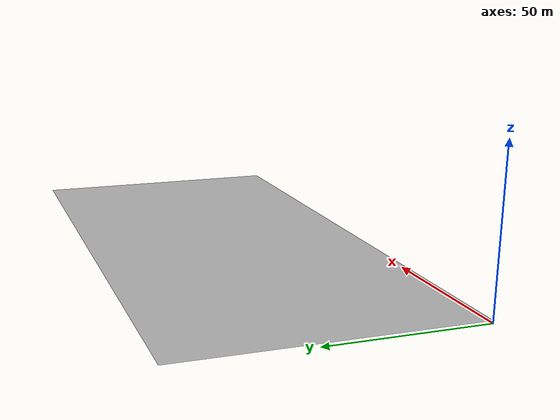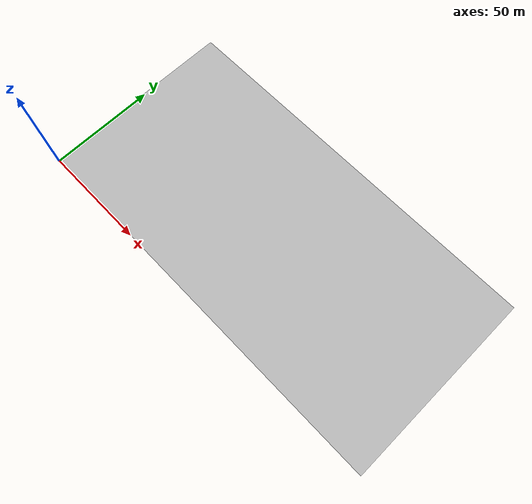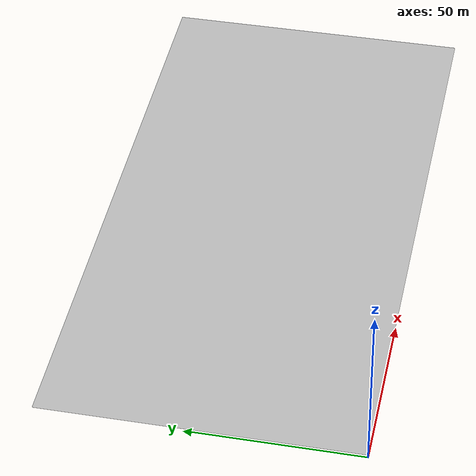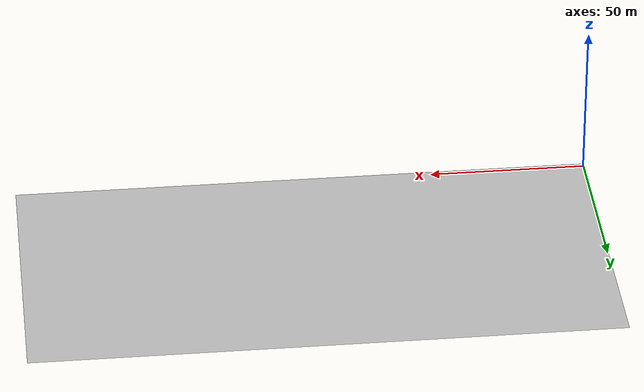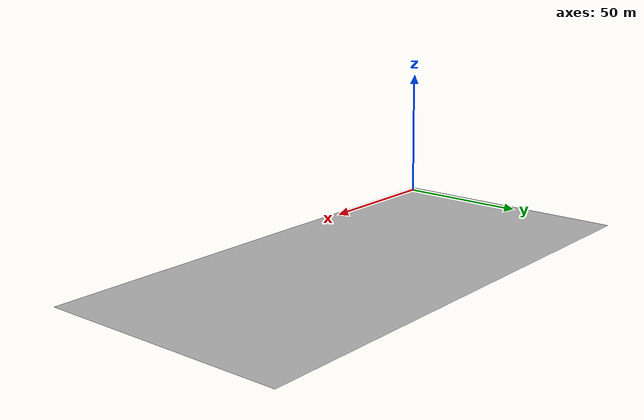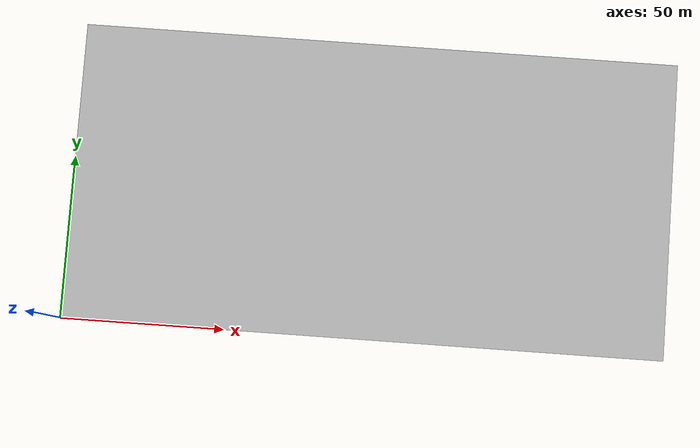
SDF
<?xml version="1.0" ?>
<sdf version="1.6">
  <model name="tu_logo">
    <pose>0 0 1 0 0 0</pose>
    <static>true</static>
    <link name="link">
      <visual name="visual">
        <geometry>
          <mesh>
            <scale>60 60 0</scale>
            <uri>model://tu_logo/meshes/tu_logo.dae</uri>
          </mesh>
        </geometry>
      </visual>
    </link>
  </model>
</sdf>
